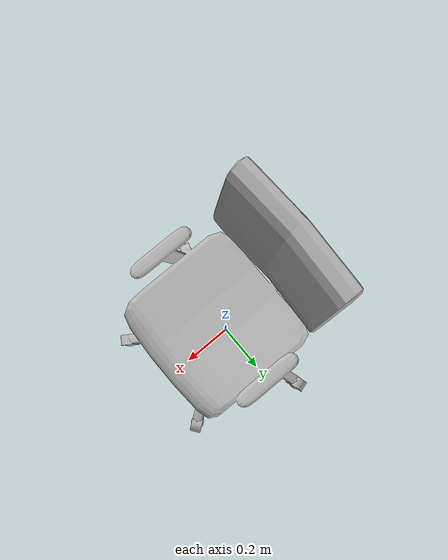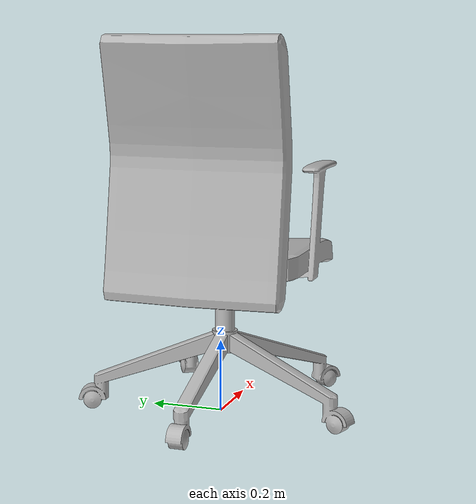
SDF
<?xml version='1.0'?>
<sdf version='1.4'>
  <model name='415'>
    <pose>0 0 0 0 0 0</pose>
    <static>true</static>
    <link name='link'>
      <collision name='collision'>
        <pose>0 0 0 0 0 0</pose>
        <geometry>
          <box>
            <size>0.749734 0.790304 2</size>
          </box>
        </geometry>
      </collision>
      <visual name='visual'>
        <pose>0 0 0 0 0 0</pose>
        <geometry>
          <mesh><uri>model://415/415.dae</uri></mesh>
        </geometry>
      </visual>
    </link>
  </model>
</sdf>
